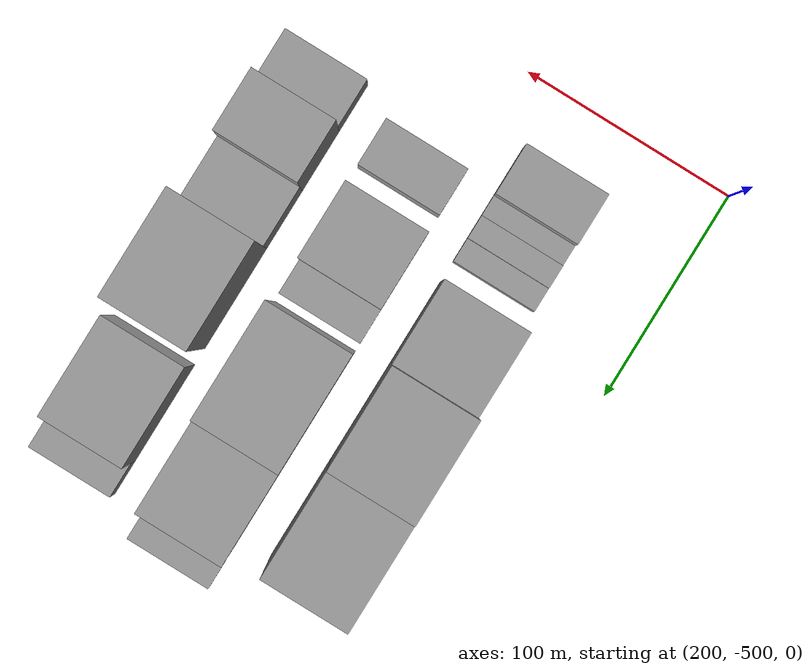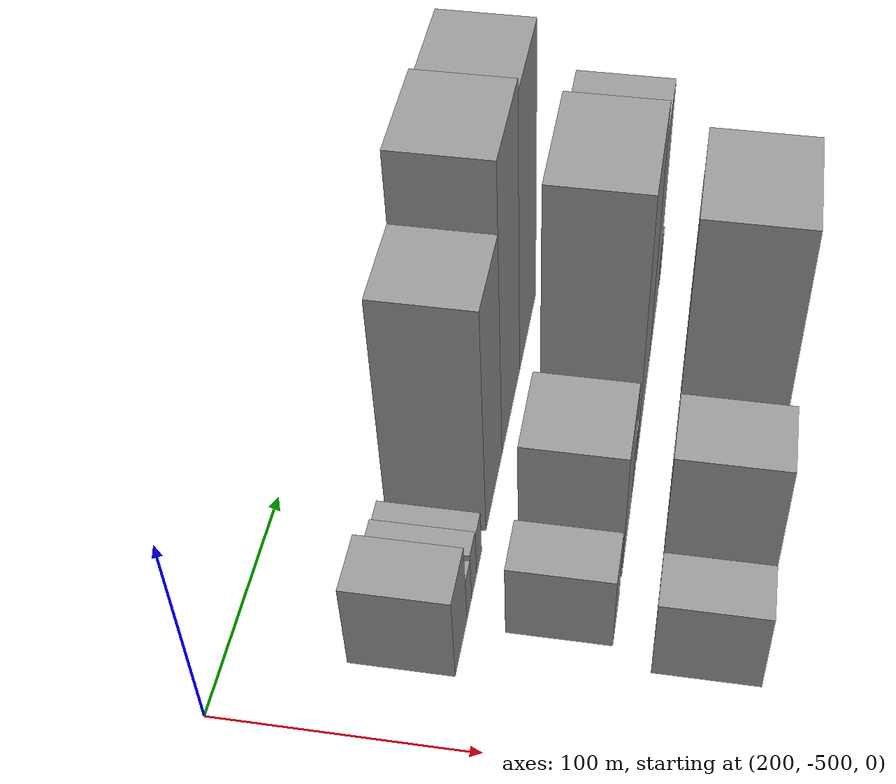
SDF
<sdf version="1.6">
 <world name="default">
  <model name="building_166">
   <static>1</static>
   <pose>265.0000 -458.9181 0 0.000000 0.000000 0.000000</pose>
   <link name="link">
    <pose>0 0 22.50 0 0 0</pose>
    <collision name="collision"><geometry><box><size>40.0000 24.3934 45.0000</size></box></geometry></collision>
    <visual name="visual">
     <cast_shadows>0</cast_shadows>
     <geometry><box><size>40.0000 24.3934 45.0000</size></box></geometry>
     <material>
      <script>
       <uri>model://grey_wall/materials/scripts</uri>
       <uri>model://grey_wall/materials/textures</uri>
       <name>vrc/grey_wall</name>
      </script>
     </material>
    </visual>
   </link>
  </model>
  <model name="building_167">
   <static>1</static>
   <pose>265.0000 -441.7846 0 0.000000 0.000000 0.000000</pose>
   <link name="link">
    <pose>0 0 12.00 0 0 0</pose>
    <collision name="collision"><geometry><box><size>40.0000 9.8736 24.0000</size></box></geometry></collision>
    <visual name="visual">
     <cast_shadows>0</cast_shadows>
     <geometry><box><size>40.0000 9.8736 24.0000</size></box></geometry>
     <material>
      <script>
       <uri>model://grey_wall/materials/scripts</uri>
       <uri>model://grey_wall/materials/textures</uri>
       <name>vrc/grey_wall</name>
      </script>
     </material>
    </visual>
   </link>
  </model>
  <model name="building_168">
   <static>1</static>
   <pose>265.0000 -431.2583 0 0.000000 0.000000 0.000000</pose>
   <link name="link">
    <pose>0 0 13.50 0 0 0</pose>
    <collision name="collision"><geometry><box><size>40.0000 11.1790 27.0000</size></box></geometry></collision>
    <visual name="visual">
     <cast_shadows>0</cast_shadows>
     <geometry><box><size>40.0000 11.1790 27.0000</size></box></geometry>
     <material>
      <script>
       <uri>model://grey_wall/materials/scripts</uri>
       <uri>model://grey_wall/materials/textures</uri>
       <name>vrc/grey_wall</name>
      </script>
     </material>
    </visual>
   </link>
  </model>
  <model name="building_169">
   <static>1</static>
   <pose>265.0000 -420.0051 0 0.000000 0.000000 0.000000</pose>
   <link name="link">
    <pose>0 0 12.00 0 0 0</pose>
    <collision name="collision"><geometry><box><size>40.0000 11.3274 24.0000</size></box></geometry></collision>
    <visual name="visual">
     <cast_shadows>0</cast_shadows>
     <geometry><box><size>40.0000 11.3274 24.0000</size></box></geometry>
     <material>
      <script>
       <uri>model://grey_wall/materials/scripts</uri>
       <uri>model://grey_wall/materials/textures</uri>
       <name>vrc/grey_wall</name>
      </script>
     </material>
    </visual>
   </link>
  </model>
  <model name="building_170">
   <static>1</static>
   <pose>265.0000 -384.6492 0 0.000000 0.000000 0.000000</pose>
   <link name="link">
    <pose>0 0 60.00 0 0 0</pose>
    <collision name="collision"><geometry><box><size>40.0000 39.3845 120.0000</size></box></geometry></collision>
    <visual name="visual">
     <cast_shadows>0</cast_shadows>
     <geometry><box><size>40.0000 39.3845 120.0000</size></box></geometry>
     <material>
      <script>
       <uri>model://grey_wall/materials/scripts</uri>
       <uri>model://grey_wall/materials/textures</uri>
       <name>vrc/grey_wall</name>
      </script>
     </material>
    </visual>
   </link>
  </model>
  <model name="building_171">
   <static>1</static>
   <pose>265.0000 -341.0384 0 0.000000 0.000000 0.000000</pose>
   <link name="link">
    <pose>0 0 76.50 0 0 0</pose>
    <collision name="collision"><geometry><box><size>40.0000 47.8370 153.0000</size></box></geometry></collision>
    <visual name="visual">
     <cast_shadows>0</cast_shadows>
     <geometry><box><size>40.0000 47.8370 153.0000</size></box></geometry>
     <material>
      <script>
       <uri>model://grey_wall/materials/scripts</uri>
       <uri>model://grey_wall/materials/textures</uri>
       <name>vrc/grey_wall</name>
      </script>
     </material>
    </visual>
   </link>
  </model>
  <model name="building_172">
   <static>1</static>
   <pose>265.0000 -292.7248 0 0.000000 0.000000 0.000000</pose>
   <link name="link">
    <pose>0 0 73.50 0 0 0</pose>
    <collision name="collision"><geometry><box><size>40.0000 48.7903 147.0000</size></box></geometry></collision>
    <visual name="visual">
     <cast_shadows>0</cast_shadows>
     <geometry><box><size>40.0000 48.7903 147.0000</size></box></geometry>
     <material>
      <script>
       <uri>model://grey_wall/materials/scripts</uri>
       <uri>model://grey_wall/materials/textures</uri>
       <name>vrc/grey_wall</name>
      </script>
     </material>
    </visual>
   </link>
  </model>
  <model name="building_219">
   <static>1</static>
   <pose>320.0000 -438.4610 0 0.000000 0.000000 0.000000</pose>
   <link name="link">
    <pose>0 0 19.50 0 0 0</pose>
    <collision name="collision"><geometry><box><size>40.0000 22.5795 39.0000</size></box></geometry></collision>
    <visual name="visual">
     <cast_shadows>0</cast_shadows>
     <geometry><box><size>40.0000 22.5795 39.0000</size></box></geometry>
     <material>
      <script>
       <uri>model://grey_wall/materials/scripts</uri>
       <uri>model://grey_wall/materials/textures</uri>
       <name>vrc/grey_wall</name>
      </script>
     </material>
    </visual>
   </link>
  </model>
  <model name="building_220">
   <static>1</static>
   <pose>320.0000 -399.6013 0 0.000000 0.000000 0.000000</pose>
   <link name="link">
    <pose>0 0 34.50 0 0 0</pose>
    <collision name="collision"><geometry><box><size>40.0000 37.1399 69.0000</size></box></geometry></collision>
    <visual name="visual">
     <cast_shadows>0</cast_shadows>
     <geometry><box><size>40.0000 37.1399 69.0000</size></box></geometry>
     <material>
      <script>
       <uri>model://grey_wall/materials/scripts</uri>
       <uri>model://grey_wall/materials/textures</uri>
       <name>vrc/grey_wall</name>
      </script>
     </material>
    </visual>
   </link>
  </model>
  <model name="building_221">
   <static>1</static>
   <pose>320.0000 -372.7929 0 0.000000 0.000000 0.000000</pose>
   <link name="link">
    <pose>0 0 15.00 0 0 0</pose>
    <collision name="collision"><geometry><box><size>40.0000 16.4769 30.0000</size></box></geometry></collision>
    <visual name="visual">
     <cast_shadows>0</cast_shadows>
     <geometry><box><size>40.0000 16.4769 30.0000</size></box></geometry>
     <material>
      <script>
       <uri>model://grey_wall/materials/scripts</uri>
       <uri>model://grey_wall/materials/textures</uri>
       <name>vrc/grey_wall</name>
      </script>
     </material>
    </visual>
   </link>
  </model>
  <model name="building_222">
   <static>1</static>
   <pose>320.0000 -333.1534 0 0.000000 0.000000 0.000000</pose>
   <link name="link">
    <pose>0 0 70.50 0 0 0</pose>
    <collision name="collision"><geometry><box><size>40.0000 54.8020 141.0000</size></box></geometry></collision>
    <visual name="visual">
     <cast_shadows>0</cast_shadows>
     <geometry><box><size>40.0000 54.8020 141.0000</size></box></geometry>
     <material>
      <script>
       <uri>model://grey_wall/materials/scripts</uri>
       <uri>model://grey_wall/materials/textures</uri>
       <name>vrc/grey_wall</name>
      </script>
     </material>
    </visual>
   </link>
  </model>
  <model name="building_223">
   <static>1</static>
   <pose>320.0000 -283.9857 0 0.000000 0.000000 0.000000</pose>
   <link name="link">
    <pose>0 0 60.00 0 0 0</pose>
    <collision name="collision"><geometry><box><size>40.0000 43.5335 120.0000</size></box></geometry></collision>
    <visual name="visual">
     <cast_shadows>0</cast_shadows>
     <geometry><box><size>40.0000 43.5335 120.0000</size></box></geometry>
     <material>
      <script>
       <uri>model://grey_wall/materials/scripts</uri>
       <uri>model://grey_wall/materials/textures</uri>
       <name>vrc/grey_wall</name>
      </script>
     </material>
    </visual>
   </link>
  </model>
  <model name="building_224">
   <static>1</static>
   <pose>320.0000 -250.1082 0 0.000000 0.000000 0.000000</pose>
   <link name="link">
    <pose>0 0 13.50 0 0 0</pose>
    <collision name="collision"><geometry><box><size>40.0000 12.2214 27.0000</size></box></geometry></collision>
    <visual name="visual">
     <cast_shadows>0</cast_shadows>
     <geometry><box><size>40.0000 12.2214 27.0000</size></box></geometry>
     <material>
      <script>
       <uri>model://grey_wall/materials/scripts</uri>
       <uri>model://grey_wall/materials/textures</uri>
       <name>vrc/grey_wall</name>
      </script>
     </material>
    </visual>
   </link>
  </model>
  <model name="building_271">
   <static>1</static>
   <pose>375.0000 -447.5292 0 0.000000 0.000000 0.000000</pose>
   <link name="link">
    <pose>0 0 21.00 0 0 0</pose>
    <collision name="collision"><geometry><box><size>40.0000 23.1162 42.0000</size></box></geometry></collision>
    <visual name="visual">
     <cast_shadows>0</cast_shadows>
     <geometry><box><size>40.0000 23.1162 42.0000</size></box></geometry>
     <material>
      <script>
       <uri>model://grey_wall/materials/scripts</uri>
       <uri>model://grey_wall/materials/textures</uri>
       <name>vrc/grey_wall</name>
      </script>
     </material>
    </visual>
   </link>
  </model>
  <model name="building_272">
   <static>1</static>
   <pose>375.0000 -421.2011 0 0.000000 0.000000 0.000000</pose>
   <link name="link">
    <pose>0 0 46.50 0 0 0</pose>
    <collision name="collision"><geometry><box><size>40.0000 29.5400 93.0000</size></box></geometry></collision>
    <visual name="visual">
     <cast_shadows>0</cast_shadows>
     <geometry><box><size>40.0000 29.5400 93.0000</size></box></geometry>
     <material>
      <script>
       <uri>model://grey_wall/materials/scripts</uri>
       <uri>model://grey_wall/materials/textures</uri>
       <name>vrc/grey_wall</name>
      </script>
     </material>
    </visual>
   </link>
  </model>
  <model name="building_273">
   <static>1</static>
   <pose>375.0000 -392.1035 0 0.000000 0.000000 0.000000</pose>
   <link name="link">
    <pose>0 0 24.00 0 0 0</pose>
    <collision name="collision"><geometry><box><size>40.0000 28.6552 48.0000</size></box></geometry></collision>
    <visual name="visual">
     <cast_shadows>0</cast_shadows>
     <geometry><box><size>40.0000 28.6552 48.0000</size></box></geometry>
     <material>
      <script>
       <uri>model://grey_wall/materials/scripts</uri>
       <uri>model://grey_wall/materials/textures</uri>
       <name>vrc/grey_wall</name>
      </script>
     </material>
    </visual>
   </link>
  </model>
  <model name="building_274">
   <static>1</static>
   <pose>375.0000 -352.7440 0 0.000000 0.000000 0.000000</pose>
   <link name="link">
    <pose>0 0 73.50 0 0 0</pose>
    <collision name="collision"><geometry><box><size>40.0000 50.0638 147.0000</size></box></geometry></collision>
    <visual name="visual">
     <cast_shadows>0</cast_shadows>
     <geometry><box><size>40.0000 50.0638 147.0000</size></box></geometry>
     <material>
      <script>
       <uri>model://grey_wall/materials/scripts</uri>
       <uri>model://grey_wall/materials/textures</uri>
       <name>vrc/grey_wall</name>
      </script>
     </material>
    </visual>
   </link>
  </model>
  <model name="building_275">
   <static>1</static>
   <pose>375.0000 -295.6610 0 0.000000 0.000000 0.000000</pose>
   <link name="link">
    <pose>0 0 40.50 0 0 0</pose>
    <collision name="collision"><geometry><box><size>40.0000 48.1022 81.0000</size></box></geometry></collision>
    <visual name="visual">
     <cast_shadows>0</cast_shadows>
     <geometry><box><size>40.0000 48.1022 81.0000</size></box></geometry>
     <material>
      <script>
       <uri>model://grey_wall/materials/scripts</uri>
       <uri>model://grey_wall/materials/textures</uri>
       <name>vrc/grey_wall</name>
      </script>
     </material>
    </visual>
   </link>
  </model>
  <model name="building_276">
   <static>1</static>
   <pose>375.0000 -263.3847 0 0.000000 0.000000 0.000000</pose>
   <link name="link">
    <pose>0 0 15.00 0 0 0</pose>
    <collision name="collision"><geometry><box><size>40.0000 16.4503 30.0000</size></box></geometry></collision>
    <visual name="visual">
     <cast_shadows>0</cast_shadows>
     <geometry><box><size>40.0000 16.4503 30.0000</size></box></geometry>
     <material>
      <script>
       <uri>model://grey_wall/materials/scripts</uri>
       <uri>model://grey_wall/materials/textures</uri>
       <name>vrc/grey_wall</name>
      </script>
     </material>
    </visual>
   </link>
  </model>
 </world>
</sdf>
